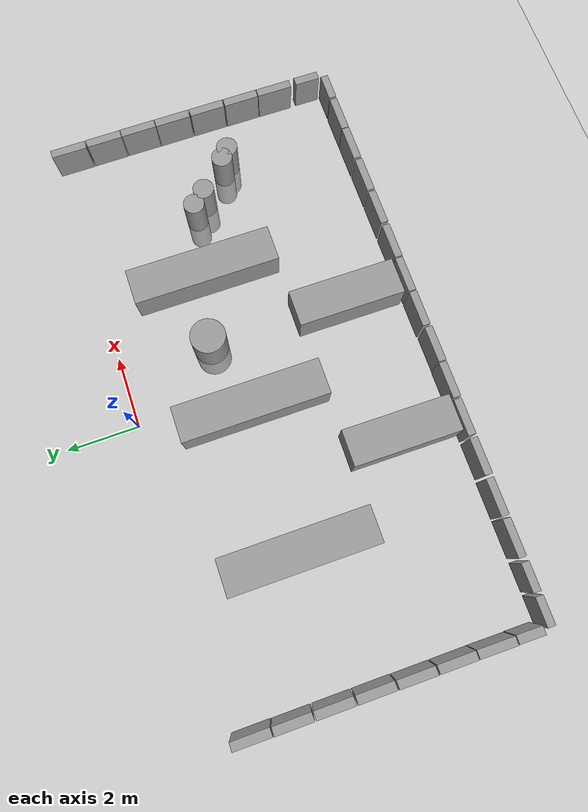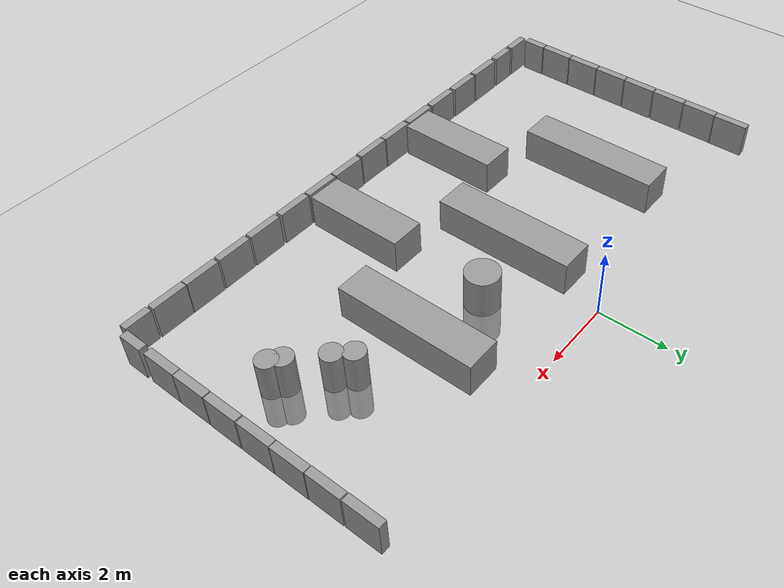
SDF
<sdf version="1.6">
 <world name="default">
  <model name="ground_plane">
   <static>1</static>
   <static>1</static>
   <link name="link">
    <collision name="collision">
     <geometry><plane><normal>0 0 1</normal><size>100 100</size></plane></geometry>
     <surface><friction><ode><mu>100</mu><mu2>50</mu2></ode></friction></surface>
    </collision>
    <visual name="visual">
     <cast_shadows>0</cast_shadows>
     <geometry><plane><normal>0 0 1</normal><size>100 100</size></plane></geometry>
     <material>
      <script><uri>file://media/materials/scripts/gazebo.material</uri><name>Gazebo/Grey</name></script>
     </material>
    </visual>
   </link>
  </model>
  <model name="unit_box_0_clone_7">
   <pose>8.11276 -0.449316 0.5 0 -0 0.000105</pose>
   <link name="link">
    <inertial>
     <mass>1</mass>
     <inertia>
      <ixx>0.166667</ixx>
      <ixy>0</ixy>
      <ixz>0</ixz>
      <iyy>0.166667</iyy>
      <iyz>0</iyz>
      <izz>0.166667</izz>
     </inertia>
    </inertial>
    <collision name="collision"><geometry><box><size>0.230819 1 1</size></box></geometry></collision>
    <visual name="visual">
     <geometry><box><size>0.230819 1 1</size></box></geometry>
     <material>
      <script><name>Gazebo/Grey</name><uri>file://media/materials/scripts/gazebo.material</uri></script>
     </material>
    </visual>
   </link>
  </model>
  <model name="unit_box_0_clone_8">
   <pose>8.11912 -1.4863 0.5 0 -0 0.000105</pose>
   <link name="link">
    <inertial>
     <mass>1</mass>
     <inertia>
      <ixx>0.166667</ixx>
      <ixy>0</ixy>
      <ixz>0</ixz>
      <iyy>0.166667</iyy>
      <iyz>0</iyz>
      <izz>0.166667</izz>
     </inertia>
    </inertial>
    <collision name="collision"><geometry><box><size>0.230819 1 1</size></box></geometry></collision>
    <visual name="visual">
     <geometry><box><size>0.230819 1 1</size></box></geometry>
     <material>
      <script><name>Gazebo/Grey</name><uri>file://media/materials/scripts/gazebo.material</uri></script>
     </material>
    </visual>
   </link>
  </model>
  <model name="unit_box_0_clone_9">
   <pose>8.12548 -2.5042 0.5 0 -0 0.000105</pose>
   <link name="link">
    <inertial>
     <mass>1</mass>
     <inertia>
      <ixx>0.166667</ixx>
      <ixy>0</ixy>
      <ixz>0</ixz>
      <iyy>0.166667</iyy>
      <iyz>0</iyz>
      <izz>0.166667</izz>
     </inertia>
    </inertial>
    <collision name="collision"><geometry><box><size>0.230819 1 1</size></box></geometry></collision>
    <visual name="visual">
     <geometry><box><size>0.230819 1 1</size></box></geometry>
     <material>
      <script><name>Gazebo/Grey</name><uri>file://media/materials/scripts/gazebo.material</uri></script>
     </material>
    </visual>
   </link>
  </model>
  <model name="unit_box_0_clone_10">
   <pose>8.12331 -3.52222 0.5 0 -0 0.000105</pose>
   <link name="link">
    <inertial>
     <mass>1</mass>
     <inertia>
      <ixx>0.166667</ixx>
      <ixy>0</ixy>
      <ixz>0</ixz>
      <iyy>0.166667</iyy>
      <iyz>0</iyz>
      <izz>0.166667</izz>
     </inertia>
    </inertial>
    <collision name="collision"><geometry><box><size>0.230819 1 1</size></box></geometry></collision>
    <visual name="visual">
     <geometry><box><size>0.230819 1 1</size></box></geometry>
     <material>
      <script><name>Gazebo/Grey</name><uri>file://media/materials/scripts/gazebo.material</uri></script>
     </material>
    </visual>
   </link>
  </model>
  <model name="unit_box_0_clone_11">
   <pose>8.1233 -4.56315 0.5 0 -0 0.000105</pose>
   <link name="link">
    <inertial>
     <mass>1</mass>
     <inertia>
      <ixx>0.166667</ixx>
      <ixy>0</ixy>
      <ixz>0</ixz>
      <iyy>0.166667</iyy>
      <iyz>0</iyz>
      <izz>0.166667</izz>
     </inertia>
    </inertial>
    <collision name="collision"><geometry><box><size>0.230819 1 1</size></box></geometry></collision>
    <visual name="visual">
     <geometry><box><size>0.230819 1 1</size></box></geometry>
     <material>
      <script><name>Gazebo/Grey</name><uri>file://media/materials/scripts/gazebo.material</uri></script>
     </material>
    </visual>
   </link>
  </model>
  <model name="unit_box_0_clone_12">
   <pose>8.11815 -5.59377 0.5 0 -0 0.000105</pose>
   <link name="link">
    <inertial>
     <mass>1</mass>
     <inertia>
      <ixx>0.166667</ixx>
      <ixy>0</ixy>
      <ixz>0</ixz>
      <iyy>0.166667</iyy>
      <iyz>0</iyz>
      <izz>0.166667</izz>
     </inertia>
    </inertial>
    <collision name="collision"><geometry><box><size>0.230819 1 1</size></box></geometry></collision>
    <visual name="visual">
     <geometry><box><size>0.230819 1 1</size></box></geometry>
     <material>
      <script><name>Gazebo/Grey</name><uri>file://media/materials/scripts/gazebo.material</uri></script>
     </material>
    </visual>
   </link>
  </model>
  <model name="unit_box_0_clone_13">
   <pose>8.11333 -6.60776 0.5 0 0 -0.005569</pose>
   <link name="link">
    <inertial>
     <mass>1</mass>
     <inertia>
      <ixx>0.166667</ixx>
      <ixy>0</ixy>
      <ixz>0</ixz>
      <iyy>0.166667</iyy>
      <iyz>0</iyz>
      <izz>0.166667</izz>
     </inertia>
    </inertial>
    <collision name="collision"><geometry><box><size>0.230819 1 1</size></box></geometry></collision>
    <visual name="visual">
     <geometry><box><size>0.230819 1 1</size></box></geometry>
     <material>
      <script><name>Gazebo/Grey</name><uri>file://media/materials/scripts/gazebo.material</uri></script>
     </material>
    </visual>
   </link>
  </model>
  <model name="unit_box_clone_15_clone_0">
   <pose>6.71207 -8.1312 0.499999 1e-06 2e-06 0.000176</pose>
   <link name="link">
    <inertial>
     <mass>1</mass>
     <inertia>
      <ixx>0.166667</ixx>
      <ixy>0</ixy>
      <ixz>0</ixz>
      <iyy>0.166667</iyy>
      <iyz>0</iyz>
      <izz>0.166667</izz>
     </inertia>
    </inertial>
    <collision name="collision"><geometry><box><size>1 0.210541 1</size></box></geometry></collision>
    <visual name="visual">
     <geometry><box><size>1 0.210541 1</size></box></geometry>
     <material>
      <script><name>Gazebo/Grey</name><uri>file://media/materials/scripts/gazebo.material</uri></script>
     </material>
    </visual>
   </link>
  </model>
  <model name="unit_box_clone_15_clone_1">
   <pose>5.69715 -8.13119 0.499999 1e-06 2e-06 0.000176</pose>
   <link name="link">
    <inertial>
     <mass>1</mass>
     <inertia>
      <ixx>0.166667</ixx>
      <ixy>0</ixy>
      <ixz>0</ixz>
      <iyy>0.166667</iyy>
      <iyz>0</iyz>
      <izz>0.166667</izz>
     </inertia>
    </inertial>
    <collision name="collision"><geometry><box><size>1 0.210541 1</size></box></geometry></collision>
    <visual name="visual">
     <geometry><box><size>1 0.210541 1</size></box></geometry>
     <material>
      <script><name>Gazebo/Grey</name><uri>file://media/materials/scripts/gazebo.material</uri></script>
     </material>
    </visual>
   </link>
  </model>
  <model name="unit_box_clone_15_clone_2">
   <pose>4.63881 -8.13737 0.499999 1e-06 2e-06 0.000176</pose>
   <link name="link">
    <inertial>
     <mass>1</mass>
     <inertia>
      <ixx>0.166667</ixx>
      <ixy>0</ixy>
      <ixz>0</ixz>
      <iyy>0.166667</iyy>
      <iyz>0</iyz>
      <izz>0.166667</izz>
     </inertia>
    </inertial>
    <collision name="collision"><geometry><box><size>1 0.210541 1</size></box></geometry></collision>
    <visual name="visual">
     <geometry><box><size>1 0.210541 1</size></box></geometry>
     <material>
      <script><name>Gazebo/Grey</name><uri>file://media/materials/scripts/gazebo.material</uri></script>
     </material>
    </visual>
   </link>
  </model>
  <model name="unit_box_clone_15_clone_3">
   <pose>3.57975 -8.13737 0.499999 1e-06 2e-06 0.000176</pose>
   <link name="link">
    <inertial>
     <mass>1</mass>
     <inertia>
      <ixx>0.166667</ixx>
      <ixy>0</ixy>
      <ixz>0</ixz>
      <iyy>0.166667</iyy>
      <iyz>0</iyz>
      <izz>0.166667</izz>
     </inertia>
    </inertial>
    <collision name="collision"><geometry><box><size>1 0.210541 1</size></box></geometry></collision>
    <visual name="visual">
     <geometry><box><size>1 0.210541 1</size></box></geometry>
     <material>
      <script><name>Gazebo/Grey</name><uri>file://media/materials/scripts/gazebo.material</uri></script>
     </material>
    </visual>
   </link>
  </model>
  <model name="unit_box_clone_15_clone_4">
   <pose>2.49815 -8.13736 0.499999 1e-06 2e-06 0.000176</pose>
   <link name="link">
    <inertial>
     <mass>1</mass>
     <inertia>
      <ixx>0.166667</ixx>
      <ixy>0</ixy>
      <ixz>0</ixz>
      <iyy>0.166667</iyy>
      <iyz>0</iyz>
      <izz>0.166667</izz>
     </inertia>
    </inertial>
    <collision name="collision"><geometry><box><size>1 0.210541 1</size></box></geometry></collision>
    <visual name="visual">
     <geometry><box><size>1 0.210541 1</size></box></geometry>
     <material>
      <script><name>Gazebo/Grey</name><uri>file://media/materials/scripts/gazebo.material</uri></script>
     </material>
    </visual>
   </link>
  </model>
  <model name="unit_box_clone_15_clone_5">
   <pose>1.46162 -8.12609 0.499999 1e-06 2e-06 0.000176</pose>
   <link name="link">
    <inertial>
     <mass>1</mass>
     <inertia>
      <ixx>0.166667</ixx>
      <ixy>0</ixy>
      <ixz>0</ixz>
      <iyy>0.166667</iyy>
      <iyz>0</iyz>
      <izz>0.166667</izz>
     </inertia>
    </inertial>
    <collision name="collision"><geometry><box><size>1 0.210541 1</size></box></geometry></collision>
    <visual name="visual">
     <geometry><box><size>1 0.210541 1</size></box></geometry>
     <material>
      <script><name>Gazebo/Grey</name><uri>file://media/materials/scripts/gazebo.material</uri></script>
     </material>
    </visual>
   </link>
  </model>
  <model name="unit_box_clone_15_clone_6">
   <pose>0.425093 -8.12608 0.499999 1e-06 2e-06 0.000176</pose>
   <link name="link">
    <inertial>
     <mass>1</mass>
     <inertia>
      <ixx>0.166667</ixx>
      <ixy>0</ixy>
      <ixz>0</ixz>
      <iyy>0.166667</iyy>
      <iyz>0</iyz>
      <izz>0.166667</izz>
     </inertia>
    </inertial>
    <collision name="collision"><geometry><box><size>1 0.210541 1</size></box></geometry></collision>
    <visual name="visual">
     <geometry><box><size>1 0.210541 1</size></box></geometry>
     <material>
      <script><name>Gazebo/Grey</name><uri>file://media/materials/scripts/gazebo.material</uri></script>
     </material>
    </visual>
   </link>
  </model>
  <model name="unit_box_clone_15_clone_7">
   <pose>-0.633969 -8.14863 0.499999 1e-06 2e-06 0.000176</pose>
   <link name="link">
    <inertial>
     <mass>1</mass>
     <inertia>
      <ixx>0.166667</ixx>
      <ixy>0</ixy>
      <ixz>0</ixz>
      <iyy>0.166667</iyy>
      <iyz>0</iyz>
      <izz>0.166667</izz>
     </inertia>
    </inertial>
    <collision name="collision"><geometry><box><size>1 0.210541 1</size></box></geometry></collision>
    <visual name="visual">
     <geometry><box><size>1 0.210541 1</size></box></geometry>
     <material>
      <script><name>Gazebo/Grey</name><uri>file://media/materials/scripts/gazebo.material</uri></script>
     </material>
    </visual>
   </link>
  </model>
  <model name="unit_box_clone_15_clone_8">
   <pose>-1.65923 -8.13735 0.499999 1e-06 2e-06 0.000176</pose>
   <link name="link">
    <inertial>
     <mass>1</mass>
     <inertia>
      <ixx>0.166667</ixx>
      <ixy>0</ixy>
      <ixz>0</ixz>
      <iyy>0.166667</iyy>
      <iyz>0</iyz>
      <izz>0.166667</izz>
     </inertia>
    </inertial>
    <collision name="collision"><geometry><box><size>1 0.210541 1</size></box></geometry></collision>
    <visual name="visual">
     <geometry><box><size>1 0.210541 1</size></box></geometry>
     <material>
      <script><name>Gazebo/Grey</name><uri>file://media/materials/scripts/gazebo.material</uri></script>
     </material>
    </visual>
   </link>
  </model>
  <model name="unit_box_clone_15_clone_9">
   <pose>-2.70703 -8.1261 0.499999 1e-06 2e-06 0.000176</pose>
   <link name="link">
    <inertial>
     <mass>1</mass>
     <inertia>
      <ixx>0.166667</ixx>
      <ixy>0</ixy>
      <ixz>0</ixz>
      <iyy>0.166667</iyy>
      <iyz>0</iyz>
      <izz>0.166667</izz>
     </inertia>
    </inertial>
    <collision name="collision"><geometry><box><size>1 0.210541 1</size></box></geometry></collision>
    <visual name="visual">
     <geometry><box><size>1 0.210541 1</size></box></geometry>
     <material>
      <script><name>Gazebo/Grey</name><uri>file://media/materials/scripts/gazebo.material</uri></script>
     </material>
    </visual>
   </link>
  </model>
  <model name="unit_box_clone_15_clone_10">
   <pose>-3.77736 -8.12609 0.499999 1e-06 2e-06 0.000176</pose>
   <link name="link">
    <inertial>
     <mass>1</mass>
     <inertia>
      <ixx>0.166667</ixx>
      <ixy>0</ixy>
      <ixz>0</ixz>
      <iyy>0.166667</iyy>
      <iyz>0</iyz>
      <izz>0.166667</izz>
     </inertia>
    </inertial>
    <collision name="collision"><geometry><box><size>1 0.210541 1</size></box></geometry></collision>
    <visual name="visual">
     <geometry><box><size>1 0.210541 1</size></box></geometry>
     <material>
      <script><name>Gazebo/Grey</name><uri>file://media/materials/scripts/gazebo.material</uri></script>
     </material>
    </visual>
   </link>
  </model>
  <model name="unit_box_clone_15_clone_11">
   <pose>-4.85896 -8.11483 0.499999 1e-06 2e-06 0.000176</pose>
   <link name="link">
    <inertial>
     <mass>1</mass>
     <inertia>
      <ixx>0.166667</ixx>
      <ixy>0</ixy>
      <ixz>0</ixz>
      <iyy>0.166667</iyy>
      <iyz>0</iyz>
      <izz>0.166667</izz>
     </inertia>
    </inertial>
    <collision name="collision"><geometry><box><size>1 0.210541 1</size></box></geometry></collision>
    <visual name="visual">
     <geometry><box><size>1 0.210541 1</size></box></geometry>
     <material>
      <script><name>Gazebo/Grey</name><uri>file://media/materials/scripts/gazebo.material</uri></script>
     </material>
    </visual>
   </link>
  </model>
  <model name="unit_box_clone_15_clone_12">
   <pose>-5.91802 -8.11482 0.499999 1e-06 2e-06 0.000176</pose>
   <link name="link">
    <inertial>
     <mass>1</mass>
     <inertia>
      <ixx>0.166667</ixx>
      <ixy>0</ixy>
      <ixz>0</ixz>
      <iyy>0.166667</iyy>
      <iyz>0</iyz>
      <izz>0.166667</izz>
     </inertia>
    </inertial>
    <collision name="collision"><geometry><box><size>1 0.210541 1</size></box></geometry></collision>
    <visual name="visual">
     <geometry><box><size>1 0.210541 1</size></box></geometry>
     <material>
      <script><name>Gazebo/Grey</name><uri>file://media/materials/scripts/gazebo.material</uri></script>
     </material>
    </visual>
   </link>
  </model>
  <model name="unit_box_0_clone_4_clone_7">
   <pose>-8.12609 -0.51803 0.5 0 -0 0.000105</pose>
   <link name="link">
    <inertial>
     <mass>1</mass>
     <inertia>
      <ixx>0.166667</ixx>
      <ixy>0</ixy>
      <ixz>0</ixz>
      <iyy>0.166667</iyy>
      <iyz>0</iyz>
      <izz>0.166667</izz>
     </inertia>
    </inertial>
    <collision name="collision"><geometry><box><size>0.230819 1 1</size></box></geometry></collision>
    <visual name="visual">
     <geometry><box><size>0.230819 1 1</size></box></geometry>
     <material>
      <script><name>Gazebo/Grey</name><uri>file://media/materials/scripts/gazebo.material</uri></script>
     </material>
    </visual>
   </link>
  </model>
  <model name="unit_box_0_clone_4_clone_8">
   <pose>-8.13284 -1.54445 0.5 0 -0 0.000105</pose>
   <link name="link">
    <inertial>
     <mass>1</mass>
     <inertia>
      <ixx>0.166667</ixx>
      <ixy>0</ixy>
      <ixz>0</ixz>
      <iyy>0.166667</iyy>
      <iyz>0</iyz>
      <izz>0.166667</izz>
     </inertia>
    </inertial>
    <collision name="collision"><geometry><box><size>0.230819 1 1</size></box></geometry></collision>
    <visual name="visual">
     <geometry><box><size>0.230819 1 1</size></box></geometry>
     <material>
      <script><name>Gazebo/Grey</name><uri>file://media/materials/scripts/gazebo.material</uri></script>
     </material>
    </visual>
   </link>
  </model>
  <model name="unit_box_0_clone_4_clone_9">
   <pose>-8.13285 -2.58437 0.5 0 -0 0.000105</pose>
   <link name="link">
    <inertial>
     <mass>1</mass>
     <inertia>
      <ixx>0.166667</ixx>
      <ixy>0</ixy>
      <ixz>0</ixz>
      <iyy>0.166667</iyy>
      <iyz>0</iyz>
      <izz>0.166667</izz>
     </inertia>
    </inertial>
    <collision name="collision"><geometry><box><size>0.230819 1 1</size></box></geometry></collision>
    <visual name="visual">
     <geometry><box><size>0.230819 1 1</size></box></geometry>
     <material>
      <script><name>Gazebo/Grey</name><uri>file://media/materials/scripts/gazebo.material</uri></script>
     </material>
    </visual>
   </link>
  </model>
  <model name="unit_box_0_clone_4_clone_10">
   <pose>-8.13285 -3.62429 0.5 0 -0 0.000105</pose>
   <link name="link">
    <inertial>
     <mass>1</mass>
     <inertia>
      <ixx>0.166667</ixx>
      <ixy>0</ixy>
      <ixz>0</ixz>
      <iyy>0.166667</iyy>
      <iyz>0</iyz>
      <izz>0.166667</izz>
     </inertia>
    </inertial>
    <collision name="collision"><geometry><box><size>0.230819 1 1</size></box></geometry></collision>
    <visual name="visual">
     <geometry><box><size>0.230819 1 1</size></box></geometry>
     <material>
      <script><name>Gazebo/Grey</name><uri>file://media/materials/scripts/gazebo.material</uri></script>
     </material>
    </visual>
   </link>
  </model>
  <model name="unit_box_0_clone_4_clone_11">
   <pose>-8.1396 -4.65746 0.5 0 -0 0.000105</pose>
   <link name="link">
    <inertial>
     <mass>1</mass>
     <inertia>
      <ixx>0.166667</ixx>
      <ixy>0</ixy>
      <ixz>0</ixz>
      <iyy>0.166667</iyy>
      <iyz>0</iyz>
      <izz>0.166667</izz>
     </inertia>
    </inertial>
    <collision name="collision"><geometry><box><size>0.230819 1 1</size></box></geometry></collision>
    <visual name="visual">
     <geometry><box><size>0.230819 1 1</size></box></geometry>
     <material>
      <script><name>Gazebo/Grey</name><uri>file://media/materials/scripts/gazebo.material</uri></script>
     </material>
    </visual>
   </link>
  </model>
  <model name="unit_box_0_clone_4_clone_12">
   <pose>-8.1396 -5.69063 0.5 0 -0 0.000105</pose>
   <link name="link">
    <inertial>
     <mass>1</mass>
     <inertia>
      <ixx>0.166667</ixx>
      <ixy>0</ixy>
      <ixz>0</ixz>
      <iyy>0.166667</iyy>
      <iyz>0</iyz>
      <izz>0.166667</izz>
     </inertia>
    </inertial>
    <collision name="collision"><geometry><box><size>0.230819 1 1</size></box></geometry></collision>
    <visual name="visual">
     <geometry><box><size>0.230819 1 1</size></box></geometry>
     <material>
      <script><name>Gazebo/Grey</name><uri>file://media/materials/scripts/gazebo.material</uri></script>
     </material>
    </visual>
   </link>
  </model>
  <model name="unit_box_0_clone_4_clone_13">
   <pose>-8.14113 -6.70872 0.500001 -2e-06 -1e-06 -0.009664</pose>
   <link name="link">
    <inertial>
     <mass>1</mass>
     <inertia>
      <ixx>0.166667</ixx>
      <ixy>0</ixy>
      <ixz>0</ixz>
      <iyy>0.166667</iyy>
      <iyz>0</iyz>
      <izz>0.166667</izz>
     </inertia>
    </inertial>
    <collision name="collision"><geometry><box><size>0.230819 1 1</size></box></geometry></collision>
    <visual name="visual">
     <geometry><box><size>0.230819 1 1</size></box></geometry>
     <material>
      <script><name>Gazebo/Grey</name><uri>file://media/materials/scripts/gazebo.material</uri></script>
     </material>
    </visual>
   </link>
  </model>
  <model name="unit_box_clone_11_clone_1_clone_0">
   <pose>-6.9088 -8.11956 0.499997 -1e-06 8e-06 -0.002409</pose>
   <link name="link">
    <inertial>
     <mass>1</mass>
     <inertia>
      <ixx>0.166667</ixx>
      <ixy>0</ixy>
      <ixz>0</ixz>
      <iyy>0.166667</iyy>
      <iyz>0</iyz>
      <izz>0.166667</izz>
     </inertia>
    </inertial>
    <collision name="collision"><geometry><box><size>0.750223 0.210541 1</size></box></geometry></collision>
    <visual name="visual">
     <geometry><box><size>0.750223 0.210541 1</size></box></geometry>
     <material>
      <script><name>Gazebo/Grey</name><uri>file://media/materials/scripts/gazebo.material</uri></script>
     </material>
    </visual>
   </link>
  </model>
  <model name="unit_box_0_clone_4_clone_13_clone_clone">
   <pose>-8.13834 -7.57659 0.499997 -7e-06 -3e-06 -0.010031</pose>
   <link name="link">
    <inertial>
     <mass>1</mass>
     <inertia>
      <ixx>0.166667</ixx>
      <ixy>0</ixy>
      <ixz>0</ixz>
      <iyy>0.166667</iyy>
      <iyz>0</iyz>
      <izz>0.166667</izz>
     </inertia>
    </inertial>
    <collision name="collision"><geometry><box><size>0.230819 0.700336 1</size></box></geometry></collision>
    <visual name="visual">
     <geometry><box><size>0.230819 0.700336 1</size></box></geometry>
     <material>
      <script><name>Gazebo/Grey</name><uri>file://media/materials/scripts/gazebo.material</uri></script>
     </material>
    </visual>
   </link>
  </model>
  <model name="unit_box_clone_11_clone_1_clone_0_clone">
   <pose>-7.75475 -8.12201 0.5 -0 -1e-06 -0.001628</pose>
   <link name="link">
    <inertial>
     <mass>1</mass>
     <inertia>
      <ixx>0.166667</ixx>
      <ixy>0</ixy>
      <ixz>0</ixz>
      <iyy>0.166667</iyy>
      <iyz>0</iyz>
      <izz>0.166667</izz>
     </inertia>
    </inertial>
    <collision name="collision"><geometry><box><size>0.750223 0.210541 1</size></box></geometry></collision>
    <visual name="visual">
     <geometry><box><size>0.750223 0.210541 1</size></box></geometry>
     <material>
      <script><name>Gazebo/Grey</name><uri>file://media/materials/scripts/gazebo.material</uri></script>
     </material>
    </visual>
   </link>
  </model>
  <model name="unit_box_clone_11_clone_1_clone_2">
   <pose>7.64249 -8.13927 0.499997 -2e-06 8e-06 -0.00063</pose>
   <link name="link">
    <inertial>
     <mass>1</mass>
     <inertia>
      <ixx>0.166667</ixx>
      <ixy>0</ixy>
      <ixz>0</ixz>
      <iyy>0.166667</iyy>
      <iyz>0</iyz>
      <izz>0.166667</izz>
     </inertia>
    </inertial>
    <collision name="collision"><geometry><box><size>0.750223 0.210541 1</size></box></geometry></collision>
    <visual name="visual">
     <geometry><box><size>0.750223 0.210541 1</size></box></geometry>
     <material>
      <script><name>Gazebo/Grey</name><uri>file://media/materials/scripts/gazebo.material</uri></script>
     </material>
    </visual>
   </link>
  </model>
  <model name="unit_box_0_clone_4_clone_13_clone_clone_clone">
   <pose>8.11858 -7.62156 0.499997 7e-06 -3e-06 -0.007706</pose>
   <link name="link">
    <inertial>
     <mass>1</mass>
     <inertia>
      <ixx>0.166667</ixx>
      <ixy>0</ixy>
      <ixz>0</ixz>
      <iyy>0.166667</iyy>
      <iyz>0</iyz>
      <izz>0.166667</izz>
     </inertia>
    </inertial>
    <collision name="collision"><geometry><box><size>0.230819 0.700336 1</size></box></geometry></collision>
    <visual name="visual">
     <geometry><box><size>0.230819 0.700336 1</size></box></geometry>
     <material>
      <script><name>Gazebo/Grey</name><uri>file://media/materials/scripts/gazebo.material</uri></script>
     </material>
    </visual>
   </link>
  </model>
  <model name="unit_box_clone_12_clone_0">
   <pose>-0.493022 -3.05461 0.499186 -0.0004 -0 -8e-05</pose>
   <link name="link">
    <inertial>
     <mass>1</mass>
     <inertia>
      <ixx>0.166667</ixx>
      <ixy>0</ixy>
      <ixz>0</ixz>
      <iyy>0.166667</iyy>
      <iyz>0</iyz>
      <izz>0.166667</izz>
     </inertia>
    </inertial>
    <collision name="collision"><geometry><box><size>1 4.07271 1</size></box></geometry></collision>
    <visual name="visual">
     <geometry><box><size>1 4.07271 1</size></box></geometry>
     <material>
      <script><name>Gazebo/Grey</name><uri>file://media/materials/scripts/gazebo.material</uri></script>
     </material>
    </visual>
   </link>
  </model>
  <model name="unit_box_clone_12_clone_1_clone">
   <pose>1.50051 -6.44147 0.499831 -0.000113 0 -0.002324</pose>
   <link name="link">
    <inertial>
     <mass>1</mass>
     <inertia>
      <ixx>0.166667</ixx>
      <ixy>0</ixy>
      <ixz>0</ixz>
      <iyy>0.166667</iyy>
      <iyz>0</iyz>
      <izz>0.166667</izz>
     </inertia>
    </inertial>
    <collision name="collision"><geometry><box><size>1 2.97932 1</size></box></geometry></collision>
    <visual name="visual">
     <geometry><box><size>1 2.97932 1</size></box></geometry>
     <material>
      <script><name>Gazebo/Grey</name><uri>file://media/materials/scripts/gazebo.material</uri></script>
     </material>
    </visual>
   </link>
  </model>
  <model name="unit_box_clone_12_clone_0_clone">
   <pose>3.51789 -2.99201 0.499186 0.0004 -0 -0.00035</pose>
   <link name="link">
    <inertial>
     <mass>1</mass>
     <inertia>
      <ixx>0.166667</ixx>
      <ixy>0</ixy>
      <ixz>0</ixz>
      <iyy>0.166667</iyy>
      <iyz>0</iyz>
      <izz>0.166667</izz>
     </inertia>
    </inertial>
    <collision name="collision"><geometry><box><size>1 4.07271 1</size></box></geometry></collision>
    <visual name="visual">
     <geometry><box><size>1 4.07271 1</size></box></geometry>
     <material>
      <script><name>Gazebo/Grey</name><uri>file://media/materials/scripts/gazebo.material</uri></script>
     </material>
    </visual>
   </link>
  </model>
  <model name="unit_box_clone_12_clone_1_clone_clone">
   <pose>-2.50799 -6.4841 0.499993 3e-06 5e-06 -0.005659</pose>
   <link name="link">
    <inertial>
     <mass>1</mass>
     <inertia>
      <ixx>0.166667</ixx>
      <ixy>0</ixy>
      <ixz>0</ixz>
      <iyy>0.166667</iyy>
      <iyz>0</iyz>
      <izz>0.166667</izz>
     </inertia>
    </inertial>
    <collision name="collision"><geometry><box><size>1 2.97932 1</size></box></geometry></collision>
    <visual name="visual">
     <geometry><box><size>1 2.97932 1</size></box></geometry>
     <material>
      <script><name>Gazebo/Grey</name><uri>file://media/materials/scripts/gazebo.material</uri></script>
     </material>
    </visual>
   </link>
  </model>
  <model name="unit_box_clone_12_clone_0_clone_0">
   <pose>-4.48867 -2.99459 0.499186 -0.0004 -0 -8e-05</pose>
   <link name="link">
    <inertial>
     <mass>1</mass>
     <inertia>
      <ixx>0.166667</ixx>
      <ixy>0</ixy>
      <ixz>0</ixz>
      <iyy>0.166667</iyy>
      <iyz>0</iyz>
      <izz>0.166667</izz>
     </inertia>
    </inertial>
    <collision name="collision"><geometry><box><size>1 4.07271 1</size></box></geometry></collision>
    <visual name="visual">
     <geometry><box><size>1 4.07271 1</size></box></geometry>
     <material>
      <script><name>Gazebo/Grey</name><uri>file://media/materials/scripts/gazebo.material</uri></script>
     </material>
    </visual>
   </link>
  </model>
  <model name="unit_cylinder_153_clone_clone_5_clone_clone_13_clone_0_clone_29_clone_32_clone_0_clone_4_clone_46_clone_42_clone_clone_clone">
   <static>1</static>
   <pose>1.50051 -2.523 0 0 -0 0</pose>
   <link name="link">
    <inertial>
     <mass>1</mass>
     <inertia><ixx>0.145833</ixx><ixy>0</ixy><ixz>0</ixz><iyy>0.145833</iyy><iyz>0</iyz><izz>0.125</izz></inertia>
    </inertial>
    <collision name="collision">
     <geometry><cylinder><radius>0.484115</radius><length>2.18667</length></cylinder></geometry>
    </collision>
    <visual name="visual">
     <geometry><cylinder><radius>0.484115</radius><length>2.18667</length></cylinder></geometry>
     <material>
      <script><name>Gazebo/Grey</name><uri>file://media/materials/scripts/gazebo.material</uri></script>
     </material>
    </visual>
   </link>
  </model>
  <model name="unit_cylinder_153_clone_clone_5_clone_clone_13_clone_0_clone_29_clone_32_clone_0_clone_4_clone_46_clone_42_clone_clone_clone_4_clone">
   <static>1</static>
   <pose>6.67507 -4.71981 0 0 -0 0</pose>
   <link name="link">
    <inertial>
     <mass>1</mass>
     <inertia><ixx>0.145833</ixx><ixy>0</ixy><ixz>0</ixz><iyy>0.145833</iyy><iyz>0</iyz><izz>0.125</izz></inertia>
    </inertial>
    <collision name="collision">
     <geometry><cylinder><radius>0.295479</radius><length>2.18667</length></cylinder></geometry>
    </collision>
    <visual name="visual">
     <geometry><cylinder><radius>0.295479</radius><length>2.18667</length></cylinder></geometry>
     <material>
      <script><name>Gazebo/Grey</name><uri>file://media/materials/scripts/gazebo.material</uri></script>
     </material>
    </visual>
   </link>
  </model>
  <model name="unit_cylinder_153_clone_clone_5_clone_clone_13_clone_0_clone_29_clone_32_clone_0_clone_4_clone_46_clone_42_clone_clone_clone_4_clone_0">
   <static>1</static>
   <pose>6.41207 -4.48776 0 0 -0 0</pose>
   <link name="link">
    <inertial>
     <mass>1</mass>
     <inertia><ixx>0.145833</ixx><ixy>0</ixy><ixz>0</ixz><iyy>0.145833</iyy><iyz>0</iyz><izz>0.125</izz></inertia>
    </inertial>
    <collision name="collision">
     <geometry><cylinder><radius>0.295479</radius><length>2.18667</length></cylinder></geometry>
    </collision>
    <visual name="visual">
     <geometry><cylinder><radius>0.295479</radius><length>2.18667</length></cylinder></geometry>
     <material>
      <script><name>Gazebo/Grey</name><uri>file://media/materials/scripts/gazebo.material</uri></script>
     </material>
    </visual>
   </link>
  </model>
  <model name="unit_cylinder_153_clone_clone_5_clone_clone_13_clone_0_clone_29_clone_32_clone_0_clone_4_clone_46_clone_42_clone_clone_clone_4_clone_1">
   <static>1</static>
   <pose>5.63854 -3.69876 0 0 -0 0</pose>
   <link name="link">
    <inertial>
     <mass>1</mass>
     <inertia><ixx>0.145833</ixx><ixy>0</ixy><ixz>0</ixz><iyy>0.145833</iyy><iyz>0</iyz><izz>0.125</izz></inertia>
    </inertial>
    <collision name="collision">
     <geometry><cylinder><radius>0.295479</radius><length>2.18667</length></cylinder></geometry>
    </collision>
    <visual name="visual">
     <geometry><cylinder><radius>0.295479</radius><length>2.18667</length></cylinder></geometry>
     <material>
      <script><name>Gazebo/Grey</name><uri>file://media/materials/scripts/gazebo.material</uri></script>
     </material>
    </visual>
   </link>
  </model>
  <model name="unit_cylinder_153_clone_clone_5_clone_clone_13_clone_0_clone_29_clone_32_clone_0_clone_4_clone_46_clone_42_clone_clone_clone_4_clone_2">
   <static>1</static>
   <pose>5.28272 -3.312 0 0 -0 0</pose>
   <link name="link">
    <inertial>
     <mass>1</mass>
     <inertia><ixx>0.145833</ixx><ixy>0</ixy><ixz>0</ixz><iyy>0.145833</iyy><iyz>0</iyz><izz>0.125</izz></inertia>
    </inertial>
    <collision name="collision">
     <geometry><cylinder><radius>0.295479</radius><length>2.18667</length></cylinder></geometry>
    </collision>
    <visual name="visual">
     <geometry><cylinder><radius>0.295479</radius><length>2.18667</length></cylinder></geometry>
     <material>
      <script><name>Gazebo/Grey</name><uri>file://media/materials/scripts/gazebo.material</uri></script>
     </material>
    </visual>
   </link>
  </model>
 </world>
</sdf>
